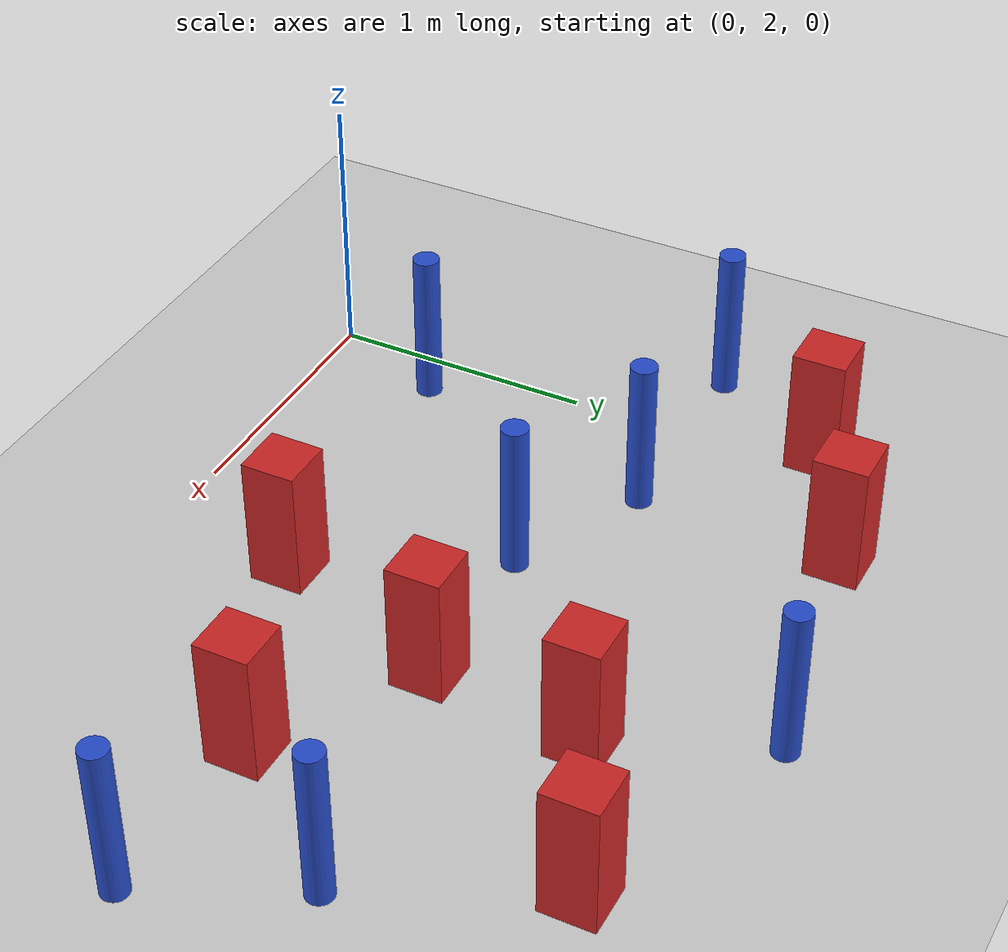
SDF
<sdf version="1.6">
 <world name="default">
  <model name="ground_plane">
   <static>1</static>
   <link name="link">
    <collision name="collision">
     <geometry><plane><normal>0 0 1</normal><size>100 100</size></plane></geometry>
     <surface><friction><ode><mu>100</mu><mu2>50</mu2></ode></friction></surface>
    </collision>
    <visual name="visual">
     <cast_shadows>0</cast_shadows>
     <geometry><plane><normal>0 0 1</normal><size>100 100</size></plane></geometry>
     <material>
      <ambient>1.0 1.0 1.0 1.0</ambient>
      <diffuse>0.8 0.8 0.8 1.0</diffuse>
      <specular>0.01 0.01 0.01 1.000000</specular>
     </material>
    </visual>
   </link>
  </model>
  <model name="square_post_obstacle29">
   <static>true</static>
   <pose>2.2436271706 4.09614649173 8.22691968438e-08 7.22125133819e-06 -7.54495500217e-07 2.29674213826e-05</pose>
   <link name="link">
    <pose>0 0 0.25 0 -0 0</pose>
    <inertial>
     <mass>100</mass>
     <inertia>
      <ixx>0.166667</ixx>
      <ixy>0</ixy>
      <ixz>0</ixz>
      <iyy>0.166667</iyy>
      <iyz>0</iyz>
      <izz>0.166667</izz>
     </inertia>
    </inertial>
    <collision name="collision"><geometry><box><size>.2 .2 .5</size></box></geometry></collision>
    <visual name="visual">
     <geometry><box><size>.2 .2 .5</size></box></geometry>
     <material>
      <script><name>Gazebo/Red</name><uri>file://media/materials/scripts/gazebo.material</uri></script>
     </material>
    </visual>
   </link>
  </model>
  <model name="pole_obstacle58">
   <static>true</static>
   <pose>0.435146856572 3.46067337315 2.88873142074e-08 -9.90536689663e-09 4.60219948993e-07 -1.20965994959e-07</pose>
   <link name="link">
    <pose>0 0 0.3 0 -0 0</pose>
    <inertial>
     <mass>1</mass>
     <inertia><ixx>0.145833</ixx><ixy>0</ixy><ixz>0</ixz><iyy>0.145833</iyy><iyz>0</iyz><izz>0.125</izz></inertia>
    </inertial>
    <collision name="collision">
     <geometry><cylinder><radius>0.05</radius><length>.6</length></cylinder></geometry>
    </collision>
    <visual name="visual">
     <geometry><cylinder><radius>0.05</radius><length>.6</length></cylinder></geometry>
     <material>
      <script><name>Gazebo/Blue</name><uri>file://media/materials/scripts/gazebo.material</uri></script>
     </material>
    </visual>
   </link>
  </model>
  <model name="square_post_obstacle62">
   <static>true</static>
   <pose>-0.0900911200471 3.95353260176 8.22691968438e-08 7.2212513382e-06 -7.54495500217e-07 2.29674213826e-05</pose>
   <link name="link">
    <pose>0 0 0.25 0 -0 0</pose>
    <inertial>
     <mass>100</mass>
     <inertia>
      <ixx>0.166667</ixx>
      <ixy>0</ixy>
      <ixz>0</ixz>
      <iyy>0.166667</iyy>
      <iyz>0</iyz>
      <izz>0.166667</izz>
     </inertia>
    </inertial>
    <collision name="collision"><geometry><box><size>.2 .2 .5</size></box></geometry></collision>
    <visual name="visual">
     <geometry><box><size>.2 .2 .5</size></box></geometry>
     <material>
      <script><name>Gazebo/Red</name><uri>file://media/materials/scripts/gazebo.material</uri></script>
     </material>
    </visual>
   </link>
  </model>
  <model name="square_post_obstacle77">
   <static>true</static>
   <pose>2.16669444252 2.87737409979 8.22691968438e-08 7.2212513382e-06 -7.54495500217e-07 2.29674213826e-05</pose>
   <link name="link">
    <pose>0 0 0.25 0 -0 0</pose>
    <inertial>
     <mass>100</mass>
     <inertia>
      <ixx>0.166667</ixx>
      <ixy>0</ixy>
      <ixz>0</ixz>
      <iyy>0.166667</iyy>
      <iyz>0</iyz>
      <izz>0.166667</izz>
     </inertia>
    </inertial>
    <collision name="collision"><geometry><box><size>.2 .2 .5</size></box></geometry></collision>
    <visual name="visual">
     <geometry><box><size>.2 .2 .5</size></box></geometry>
     <material>
      <script><name>Gazebo/Red</name><uri>file://media/materials/scripts/gazebo.material</uri></script>
     </material>
    </visual>
   </link>
  </model>
  <model name="pole_obstacle92">
   <static>true</static>
   <pose>1.38772694952 4.41125062074 2.88873142074e-08 -9.90536689852e-09 4.60219948989e-07 -1.2096599496e-07</pose>
   <link name="link">
    <pose>0 0 0.3 0 -0 0</pose>
    <inertial>
     <mass>1</mass>
     <inertia><ixx>0.145833</ixx><ixy>0</ixy><ixz>0</ixz><iyy>0.145833</iyy><iyz>0</iyz><izz>0.125</izz></inertia>
    </inertial>
    <collision name="collision">
     <geometry><cylinder><radius>0.05</radius><length>.6</length></cylinder></geometry>
    </collision>
    <visual name="visual">
     <geometry><cylinder><radius>0.05</radius><length>.6</length></cylinder></geometry>
     <material>
      <script><name>Gazebo/Blue</name><uri>file://media/materials/scripts/gazebo.material</uri></script>
     </material>
    </visual>
   </link>
  </model>
  <model name="pole_obstacle94">
   <static>true</static>
   <pose>-0.360778436701 3.46122472927 2.88873142074e-08 -9.90536689663e-09 4.60219948993e-07 -1.20965994959e-07</pose>
   <link name="link">
    <pose>0 0 0.3 0 -0 0</pose>
    <inertial>
     <mass>1</mass>
     <inertia><ixx>0.145833</ixx><ixy>0</ixy><ixz>0</ixz><iyy>0.145833</iyy><iyz>0</iyz><izz>0.125</izz></inertia>
    </inertial>
    <collision name="collision">
     <geometry><cylinder><radius>0.05</radius><length>.6</length></cylinder></geometry>
    </collision>
    <visual name="visual">
     <geometry><cylinder><radius>0.05</radius><length>.6</length></cylinder></geometry>
     <material>
      <script><name>Gazebo/Blue</name><uri>file://media/materials/scripts/gazebo.material</uri></script>
     </material>
    </visual>
   </link>
  </model>
  <model name="pole_obstacle120">
   <static>true</static>
   <pose>2.84354620878 2.83544422388 2.88873142074e-08 -9.90536690232e-09 4.6021994898e-07 -1.20965994968e-07</pose>
   <link name="link">
    <pose>0 0 0.3 0 -0 0</pose>
    <inertial>
     <mass>1</mass>
     <inertia><ixx>0.145833</ixx><ixy>0</ixy><ixz>0</ixz><iyy>0.145833</iyy><iyz>0</iyz><izz>0.125</izz></inertia>
    </inertial>
    <collision name="collision">
     <geometry><cylinder><radius>0.05</radius><length>.6</length></cylinder></geometry>
    </collision>
    <visual name="visual">
     <geometry><cylinder><radius>0.05</radius><length>.6</length></cylinder></geometry>
     <material>
      <script><name>Gazebo/Blue</name><uri>file://media/materials/scripts/gazebo.material</uri></script>
     </material>
    </visual>
   </link>
  </model>
  <model name="square_post_obstacle117">
   <static>true</static>
   <pose>1.33909130834 2.53308561445 8.22691968438e-08 7.2212513382e-06 -7.54495500217e-07 2.29674213826e-05</pose>
   <link name="link">
    <pose>0 0 0.25 0 -0 0</pose>
    <inertial>
     <mass>100</mass>
     <inertia>
      <ixx>0.166667</ixx>
      <ixy>0</ixy>
      <ixz>0</ixz>
      <iyy>0.166667</iyy>
      <iyz>0</iyz>
      <izz>0.166667</izz>
     </inertia>
    </inertial>
    <collision name="collision"><geometry><box><size>.2 .2 .5</size></box></geometry></collision>
    <visual name="visual">
     <geometry><box><size>.2 .2 .5</size></box></geometry>
     <material>
      <script><name>Gazebo/Red</name><uri>file://media/materials/scripts/gazebo.material</uri></script>
     </material>
    </visual>
   </link>
  </model>
  <model name="square_post_obstacle132">
   <static>true</static>
   <pose>0.446692911825 4.23693979107 8.22691968438e-08 7.2212513382e-06 -7.54495500217e-07 2.29674213826e-05</pose>
   <link name="link">
    <pose>0 0 0.25 0 -0 0</pose>
    <inertial>
     <mass>100</mass>
     <inertia>
      <ixx>0.166667</ixx>
      <ixy>0</ixy>
      <ixz>0</ixz>
      <iyy>0.166667</iyy>
      <iyz>0</iyz>
      <izz>0.166667</izz>
     </inertia>
    </inertial>
    <collision name="collision"><geometry><box><size>.2 .2 .5</size></box></geometry></collision>
    <visual name="visual">
     <geometry><box><size>.2 .2 .5</size></box></geometry>
     <material>
      <script><name>Gazebo/Red</name><uri>file://media/materials/scripts/gazebo.material</uri></script>
     </material>
    </visual>
   </link>
  </model>
  <model name="pole_obstacle146">
   <static>true</static>
   <pose>2.57611843783 3.39013336612 2.88873142074e-08 -9.90536690232e-09 4.6021994898e-07 -1.20965994968e-07</pose>
   <link name="link">
    <pose>0 0 0.3 0 -0 0</pose>
    <inertial>
     <mass>1</mass>
     <inertia><ixx>0.145833</ixx><ixy>0</ixy><ixz>0</ixz><iyy>0.145833</iyy><iyz>0</iyz><izz>0.125</izz></inertia>
    </inertial>
    <collision name="collision">
     <geometry><cylinder><radius>0.05</radius><length>.6</length></cylinder></geometry>
    </collision>
    <visual name="visual">
     <geometry><cylinder><radius>0.05</radius><length>.6</length></cylinder></geometry>
     <material>
      <script><name>Gazebo/Blue</name><uri>file://media/materials/scripts/gazebo.material</uri></script>
     </material>
    </visual>
   </link>
  </model>
  <model name="square_post_obstacle149">
   <static>true</static>
   <pose>1.65896673007 3.82186584765 8.22691968438e-08 7.2212513382e-06 -7.54495500217e-07 2.29674213826e-05</pose>
   <link name="link">
    <pose>0 0 0.25 0 -0 0</pose>
    <inertial>
     <mass>100</mass>
     <inertia>
      <ixx>0.166667</ixx>
      <ixy>0</ixy>
      <ixz>0</ixz>
      <iyy>0.166667</iyy>
      <iyz>0</iyz>
      <izz>0.166667</izz>
     </inertia>
    </inertial>
    <collision name="collision"><geometry><box><size>.2 .2 .5</size></box></geometry></collision>
    <visual name="visual">
     <geometry><box><size>.2 .2 .5</size></box></geometry>
     <material>
      <script><name>Gazebo/Red</name><uri>file://media/materials/scripts/gazebo.material</uri></script>
     </material>
    </visual>
   </link>
  </model>
  <model name="pole_obstacle166">
   <static>true</static>
   <pose>0.17752635395 2.45416370281 2.88873142074e-08 -9.90536689569e-09 4.60219948995e-07 -1.20965994955e-07</pose>
   <link name="link">
    <pose>0 0 0.3 0 -0 0</pose>
    <inertial>
     <mass>1</mass>
     <inertia><ixx>0.145833</ixx><ixy>0</ixy><ixz>0</ixz><iyy>0.145833</iyy><iyz>0</iyz><izz>0.125</izz></inertia>
    </inertial>
    <collision name="collision">
     <geometry><cylinder><radius>0.05</radius><length>.6</length></cylinder></geometry>
    </collision>
    <visual name="visual">
     <geometry><cylinder><radius>0.05</radius><length>.6</length></cylinder></geometry>
     <material>
      <script><name>Gazebo/Blue</name><uri>file://media/materials/scripts/gazebo.material</uri></script>
     </material>
    </visual>
   </link>
  </model>
  <model name="pole_obstacle211">
   <static>true</static>
   <pose>0.954199549436 3.21919337304 2.88873142074e-08 -9.90536689802e-09 4.6021994899e-07 -1.2096599496e-07</pose>
   <link name="link">
    <pose>0 0 0.3 0 -0 0</pose>
    <inertial>
     <mass>1</mass>
     <inertia><ixx>0.145833</ixx><ixy>0</ixy><ixz>0</ixz><iyy>0.145833</iyy><iyz>0</iyz><izz>0.125</izz></inertia>
    </inertial>
    <collision name="collision">
     <geometry><cylinder><radius>0.05</radius><length>.6</length></cylinder></geometry>
    </collision>
    <visual name="visual">
     <geometry><cylinder><radius>0.05</radius><length>.6</length></cylinder></geometry>
     <material>
      <script><name>Gazebo/Blue</name><uri>file://media/materials/scripts/gazebo.material</uri></script>
     </material>
    </visual>
   </link>
  </model>
  <model name="square_post_obstacle207">
   <static>true</static>
   <pose>1.59320003262 3.22723996466 8.22691968438e-08 7.2212513382e-06 -7.54495500217e-07 2.29674213826e-05</pose>
   <link name="link">
    <pose>0 0 0.25 0 -0 0</pose>
    <inertial>
     <mass>100</mass>
     <inertia>
      <ixx>0.166667</ixx>
      <ixy>0</ixy>
      <ixz>0</ixz>
      <iyy>0.166667</iyy>
      <iyz>0</iyz>
      <izz>0.166667</izz>
     </inertia>
    </inertial>
    <collision name="collision"><geometry><box><size>.2 .2 .5</size></box></geometry></collision>
    <visual name="visual">
     <geometry><box><size>.2 .2 .5</size></box></geometry>
     <material>
      <script><name>Gazebo/Red</name><uri>file://media/materials/scripts/gazebo.material</uri></script>
     </material>
    </visual>
   </link>
  </model>
 </world>
</sdf>
